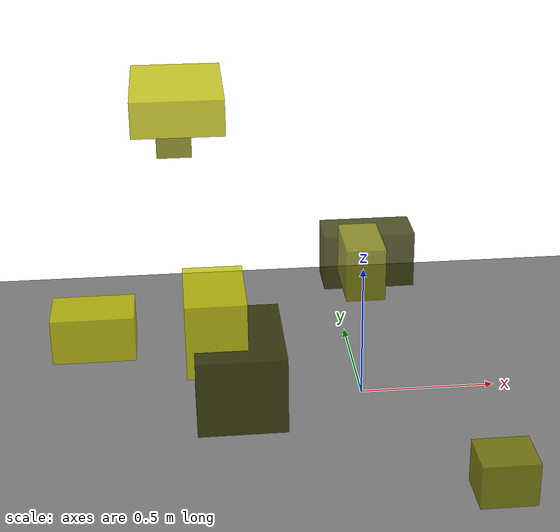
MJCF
<?xml version="1.0"?>
<mujoco model="obstacle_scene">
  <compiler angle="radian" coordinate="local"/>
  <option timestep="0.001" gravity="0 0 -9.81"/>

  <asset>
    <material name="obstacle_mat" rgba="0.8 0.8 0.0 0.8"/>
    <material name="ground_mat" rgba="0.5 0.5 0.5 1"/>
  </asset>

  <worldbody>
    <!-- Ground plane -->
    <geom name="ground" type="plane" size="3 3 0.1" material="ground_mat"/>

    <!-- Obstacles -->
    <body name="obstacle_0" pos="-0.024263 -0.214250 0.664654">
      <geom name="obs_0" type="box" size="0.149685 0.075841 0.093383" rgba="0.2 0.2 0.0 0.8"/>
    </body>
    <body name="obstacle_1" pos="-0.103181 -0.638393 0.826953">
      <geom name="obs_1" type="box" size="0.058291 0.104106 0.080520" rgba="0.5 0.5 0.0 0.8"/>
    </body>
    <body name="obstacle_2" pos="-0.636168 -0.243991 1.230658">
      <geom name="obs_2" type="box" size="0.142948 0.200447 0.056984" rgba="0.8 0.8 0.0 0.8"/>
    </body>
    <body name="obstacle_3" pos="-0.482476 -0.658608 0.492026">
      <geom name="obs_3" type="box" size="0.136618 0.187543 0.123327" rgba="0.2 0.2 0.0 0.8"/>
    </body>
    <body name="obstacle_4" pos="-0.652400 0.199215 1.031582">
      <geom name="obs_4" type="box" size="0.059847 0.151354 0.099212" rgba="0.5 0.5 0.0 0.8"/>
    </body>
    <body name="obstacle_5" pos="-0.550502 -0.632192 0.645565">
      <geom name="obs_5" type="box" size="0.092746 0.141244 0.118817" rgba="0.8 0.8 0.0 0.8"/>
    </body>
    <body name="obstacle_6" pos="-0.494043 -0.231960 0.277558">
      <geom name="obs_6" type="box" size="0.104251 0.078693 0.048321" rgba="0.2 0.2 0.0 0.8"/>
    </body>
    <body name="obstacle_7" pos="0.322593 -0.871362 0.193371">
      <geom name="obs_7" type="box" size="0.091899 0.082040 0.075003" rgba="0.5 0.5 0.0 0.8"/>
    </body>
    <body name="obstacle_8" pos="-0.901689 -0.804909 0.729400">
      <geom name="obs_8" type="box" size="0.117605 0.078764 0.066735" rgba="0.8 0.8 0.0 0.8"/>
    </body>
  </worldbody>
</mujoco>
